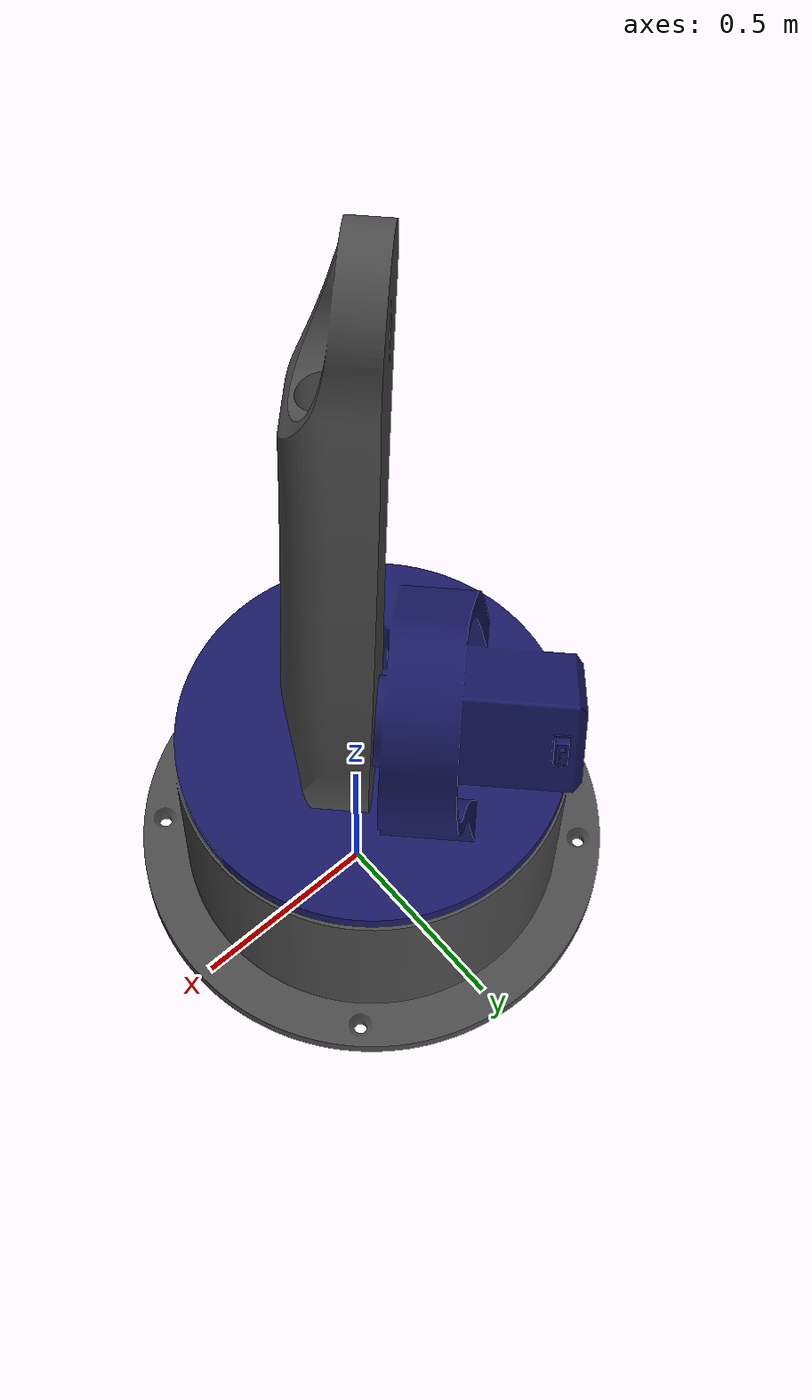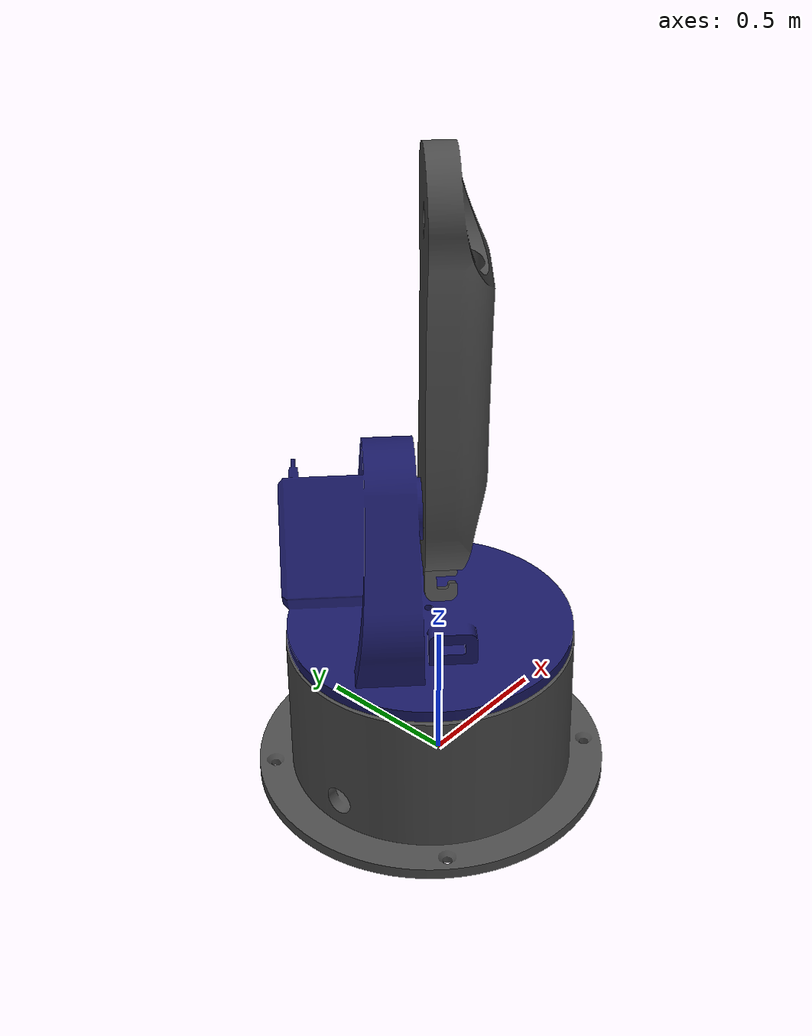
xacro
<?xml version="1.0"?>

<robot xmlns:xacro="http://www.ros.org/wiki/xacro" name="Arm">
    <link name="base_link">
        <visual>
            <origin xyz="0.0 0.0 0.0" rpy="0 0.0 0.0"/>
            <geometry>
                <mesh filename="package://arm/meshes/Base.stl" scale="0.01 0.01 0.01"/>
            </geometry>
            <material name="Grey">
                <color rgba="0.3 0.3 0.3 1.0"/>
            </material>
        </visual>
        <collision>
            <origin xyz="0.0 0.0 0.0" rpy="0.0 0.0 0.0"/>
            <geometry>
                <mesh filename="package://arm/meshes/Base.stl" scale="0.01 0.01 0.01"/>
            </geometry>
        </collision>

    </link>
    <link name="shoulder">
        <visual>
            <origin xyz="0.0 0.0 0.0" rpy="0 0.0 0.0"/>
            <geometry>
                <mesh filename="package://arm/meshes/Shoulder.stl" scale="0.01 0.01 0.01"/>
            </geometry>
            <material name="Blue">
                <color rgba="0.1 0.1 0.4 1.0"/>
            </material>
        </visual>
        <collision>
            <origin xyz="0.0 0.0 0.0" rpy="0.0 0.0 0.0"/>
            <geometry>
                <mesh filename="package://arm/meshes/Shoulder.stl" scale="0.01 0.01 0.01"/>
            </geometry>
        </collision>
    </link>

    <joint name="Shoulder" type="revolute">
        <origin xyz="0.0 0.0 0.0" rpy="0.0 0.0 0.0"/>
        <parent link="base_motor"/>
        <child link="shoulder"/>
        <axis xyz="0.0 0.0 1.0"/>
        <limit lower="-1.57" upper="1.57" effort="1.0" velocity="1.0"/>
    </joint>

    <link name="base_motor">
        <visual>
            <origin xyz="0.0 0.0 0.0" rpy="0.0 0.0 0.0"/>
            <geometry>
                <mesh filename="package://arm/meshes/Base_motor.stl" scale="0.01 0.01 0.01"/>
            </geometry>
            <material name="Black">
                <color rgba="0.0 0.0 0.0 1.0"/>
            </material>
        </visual>
        <collision>
            <origin xyz="0.0 0.0 0.0" rpy="0.0 0.0 0.0"/>
            <geometry>
                <mesh filename="package://arm/meshes/Base_motor.stl" scale="0.01 0.01 0.01"/>
            </geometry>
        </collision>
    </link>

    <joint name="Base_motor" type="fixed">
        <origin xyz="0.0 0.0 0.0" rpy="0.0 0.0 0.0"/>
        <parent link="base_link"/>
        <child link="base_motor"/>
        <axis xyz="0.0 0.0 0.0"/>
    </joint>

    <link name="link_1">
        <visual>
            <origin xyz="0.0 0.0 0.0" rpy="0.0 0.0 0.0"/>
            <geometry>
                <mesh filename="package://arm/meshes/Link_1.stl" scale="0.01 0.01 0.01"/>
            </geometry>
            <material name="Grey">
                <color rgba="0.3 0.3 0.3 1.0"/>
            </material>
        </visual>
        <collision>
            <origin xyz="0.0 0.0 0.0" rpy="0.0 0.0 0.0"/>
            <geometry>
                <mesh filename="package://arm/meshes/Link_1.stl" scale="0.01 0.01 0.01"/>
            </geometry>
        </collision>
    </link>

    <link name="shoulder_motor">
        <visual>
            <origin xyz="0.0 0.0 0.0" rpy="0.0 0.0 0.0"/>
            <geometry>
                <mesh filename="package://arm/meshes/Shoulder_motor.stl" scale="0.01 0.01 0.01"/>
            </geometry>
            <material name="Black">
                <color rgba="0.0 0.0 0.0 1.0"/>
            </material>
        </visual>
        <collision>
            <origin xyz="0.0 0.0 0.0" rpy="0.0 0.0 0.0"/>
            <geometry>
                <mesh filename="package://arm/meshes/Shoulder_motor.stl" scale="0.01 0.01 0.01"/>
            </geometry>
        </collision>
    </link>

    <joint name="shoulder_motor" type="fixed">
        <origin xyz="0.0 0.0 0.0" rpy="0.0 0.0 0.0"/>
        <parent link="shoulder"/>
        <child link="shoulder_motor"/>
    </joint>

    <joint name="link_1" type="revolute">
        <origin xyz="0.0 0.0 0.0" rpy="0.0 0.0 0.0"/>
        <parent link="shoulder_motor"/>
        <child link="link_1"/>
        <axis xyz="0.0 0.0 1.0"/>
        <limit lower="-1.57" upper="1.57" effort="1.0" velocity="1.0"/>
    </joint>
</robot>
